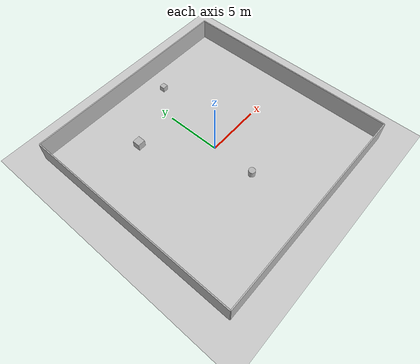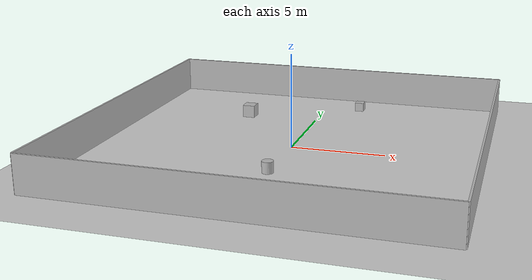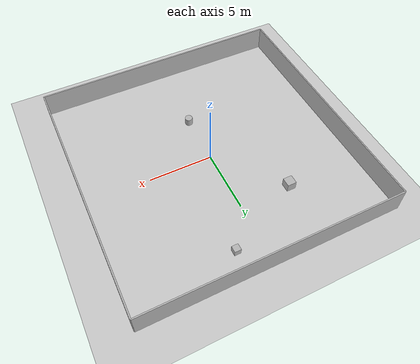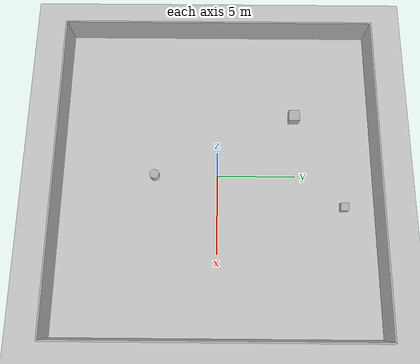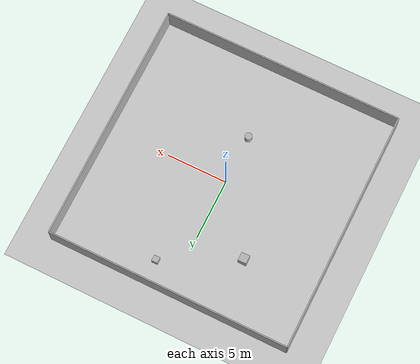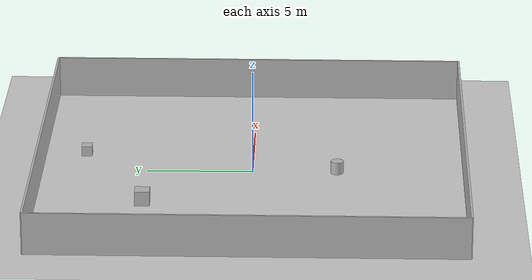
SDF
<?xml version="1.0" ?>
<sdf version="1.5">
  <world name="room_with_obstacles">
    <!-- Light source -->
    <include>
      <uri>model://sun</uri>
    </include>

    <!-- Ground plane (place at the origin) -->
    <include>
      <uri>model://ground_plane</uri>
    </include>

    <!-- Room (4 walls) -->
    <!-- Wall 1 (along x-axis) -->
    <model name="wall1">
      <static>true</static>
      <link name="link">
        <collision name="collision">
          <geometry>
            <box>
              <size>20 0.1 2</size> <!-- Length, Thickness, Height -->
            </box>
          </geometry>
        </collision>
        <visual name="visual">
          <geometry>
            <box>
              <size>20 0.1 2</size> <!-- Length, Thickness, Height -->
            </box>
          </geometry>
        </visual>
      </link>
      <pose>0 10 1 0 0 0</pose> <!-- Positioned at z=1 to ensure it's on the ground -->
    </model>

    <!-- Wall 2 (along y-axis) -->
    <model name="wall2">
      <static>true</static>
      <link name="link">
        <collision name="collision">
          <geometry>
            <box>
              <size>0.1 20 2</size> <!-- Length, Thickness, Height -->
            </box>
          </geometry>
        </collision>
        <visual name="visual">
          <geometry>
            <box>
              <size>0.1 20 2</size>
            </box>
          </geometry>
        </visual>
      </link>
      <pose>10 0 1 0 0 0</pose> <!-- Positioned at z=1 to ensure it's on the ground -->
    </model>

    <!-- Wall 3 (opposite x-axis) -->
    <model name="wall3">
      <static>true</static>
      <link name="link">
        <collision name="collision">
          <geometry>
            <box>
              <size>20 0.1 2</size> <!-- Length, Thickness, Height -->
            </box>
          </geometry>
        </collision>
        <visual name="visual">
          <geometry>
            <box>
              <size>20 0.1 2</size>
            </box>
          </geometry>
        </visual>
      </link>
      <pose>0 -10 1 0 0 0</pose> <!-- Positioned at z=1 -->
    </model>

    <!-- Wall 4 (opposite y-axis) -->
    <model name="wall4">
      <static>true</static>
      <link name="link">
        <collision name="collision">
          <geometry>
            <box>
              <size>0.1 20 2</size>
            </box>
          </geometry>
        </collision>
        <visual name="visual">
          <geometry>
            <box>
              <size>0.1 20 2</size>
            </box>
          </geometry>
        </visual>
      </link>
      <pose>-10 0 1 0 0 0</pose>
    </model>

    <!-- Obstacles -->
    <!-- Obstacle 1 (box) -->
    <model name="obstacle1">
      <static>true</static>
      <link name="link">
        <collision name="collision">
          <geometry>
            <box>
              <size>0.5 0.5 0.5</size> <!-- Length, Width, Height -->
            </box>
          </geometry>
        </collision>
        <visual name="visual">
          <geometry>
            <box>
              <size>0.5 0.5 0.5</size>
            </box>
          </geometry>
        </visual>
      </link>
      <pose>2 8 0.25 0 0 0</pose> <!-- Positioned at z=0.25, half of height -->
    </model>

    <!-- Obstacle 2 (box) -->
    <model name="obstacle2">
      <static>true</static>
      <link name="link">
        <collision name="collision">
          <geometry>
            <box>
              <size>0.7 0.7 0.7</size>
            </box>
          </geometry>
        </collision>
        <visual name="visual">
          <geometry>
            <box>
              <size>0.7 0.7 0.7</size>
            </box>
          </geometry>
        </visual>
      </link>
      <pose>-4 5 0.35 0 0 0</pose> <!-- Positioned at z=0.35, half of height -->
    </model>

    <!-- Obstacle 3 (cylinder) -->
    <model name="obstacle3">
      <static>true</static>
      <link name="link">
        <collision name="collision">
          <geometry>
            <cylinder>
              <radius>0.3</radius>
              <length>0.6</length>
            </cylinder>
          </geometry>
        </collision>
        <visual name="visual">
          <geometry>
            <cylinder>
              <radius>0.3</radius>
              <length>0.6</length>
            </cylinder>
          </geometry>
        </visual>
      </link>
      <pose>0 -4 0.3 0 0 0</pose> <!-- Positioned at z=0.3, half of height -->
    </model>

  </world>
</sdf>
